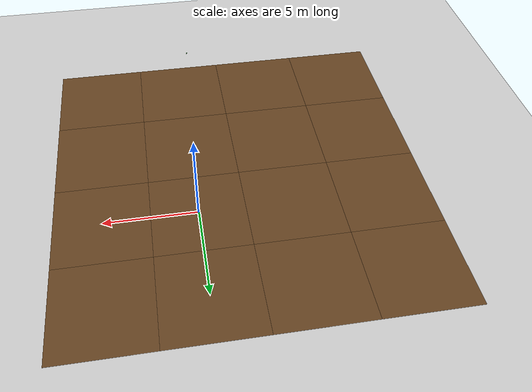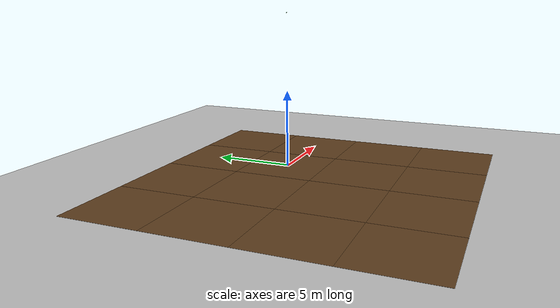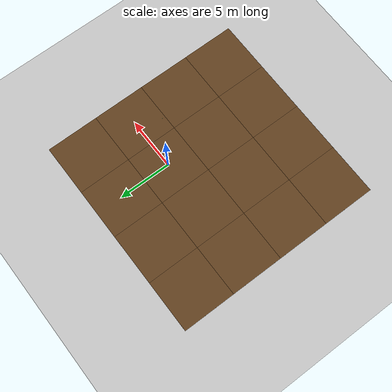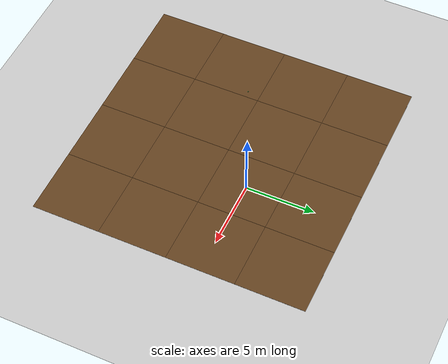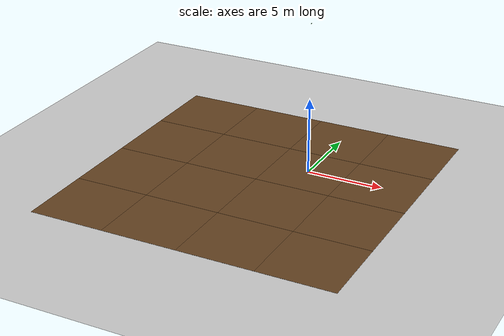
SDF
<sdf version="1.9">
 <world name="empty">
  <physics name="1ms" type="ignored">
   <max_step_size>0.001</max_step_size>
   <real_time_factor>1</real_time_factor>
   <real_time_update_rate>1000</real_time_update_rate>
  </physics>
  <plugin name="gz::sim::systems::Physics" filename="ignition-gazebo-physics-system"/>
  <plugin name="gz::sim::systems::UserCommands" filename="ignition-gazebo-user-commands-system"/>
  <plugin name="gz::sim::systems::SceneBroadcaster" filename="ignition-gazebo-scene-broadcaster-system"/>
  <plugin name="gz::sim::systems::Contact" filename="ignition-gazebo-contact-system"/>
  <plugin name="gz::sim::systems::Sensors" filename="ignition-gazebo-sensors-system">
   <render_engine>ogre2</render_engine>
  </plugin>
  <gravity>0 0 -9.8</gravity>
  <magnetic_field>6e-06 2.3e-05 -4.2e-05</magnetic_field>
  <atmosphere type="adiabatic"/>
  <scene><ambient>0.4 0.4 0.4 1</ambient><background>0.7 0.7 0.7 1</background><shadows>true</shadows></scene>
  <model name="ground_plane">
   <static>true</static>
   <link name="link">
    <collision name="collision">
     <geometry><plane><normal>0 0 1</normal><size>100 100</size></plane></geometry>
    </collision>
    <visual name="visual">
     <geometry><plane><normal>0 0 1</normal><size>100 100</size></plane></geometry>
     <material>
      <ambient>0.8 0.8 0.8 1</ambient>
      <diffuse>0.8 0.8 0.8 1</diffuse>
      <specular>0.8 0.8 0.8 1</specular>
     </material>
    </visual>
    <inertial>
     <mass>1</mass>
     <inertia><ixx>1</ixx><ixy>0</ixy><ixz>0</ixz><iyy>1</iyy><iyz>0</iyz><izz>1</izz></inertia>
    </inertial>
   </link>
  </model>
  <include>
   <uri>package://amigabot_pkg/models/my_ground_plane</uri>
   <pose>0 0 0.03 0 0 0</pose>
   <name>ground_00</name>
   <static>true</static>
  </include>
  <include>
   <uri>package://amigabot_pkg/models/my_ground_plane</uri>
   <pose>-5 0 0.03 0 0 0</pose>
   <name>ground_01</name>
   <static>true</static>
  </include>
  <include>
   <uri>package://amigabot_pkg/models/my_ground_plane</uri>
   <pose>0 -5 0.03 0 0 0</pose>
   <name>ground_02</name>
   <static>true</static>
  </include>
  <include>
   <uri>package://amigabot_pkg/models/my_ground_plane</uri>
   <pose>5 0 0.03 0 0 0</pose>
   <name>ground_03</name>
   <static>true</static>
  </include>
  <include>
   <uri>package://amigabot_pkg/models/my_ground_plane</uri>
   <pose>0 5 0.03 0 0 0</pose>
   <name>ground_04</name>
   <static>true</static>
  </include>
  <include>
   <uri>package://amigabot_pkg/models/my_ground_plane</uri>
   <pose>-5 -5 0.03 0 0 0</pose>
   <name>ground_05</name>
   <static>true</static>
  </include>
  <include>
   <uri>package://amigabot_pkg/models/my_ground_plane</uri>
   <pose>5 -5 0.03 0 0 0</pose>
   <name>ground_06</name>
   <static>true</static>
  </include>
  <include>
   <uri>package://amigabot_pkg/models/my_ground_plane</uri>
   <pose>-10 0 0.03 0 0 0</pose>
   <name>ground_07</name>
   <static>true</static>
  </include>
  <include>
   <uri>package://amigabot_pkg/models/my_ground_plane</uri>
   <pose>5 5 0.03 0 0 0</pose>
   <name>ground_08</name>
   <static>true</static>
  </include>
  <include>
   <uri>package://amigabot_pkg/models/my_ground_plane</uri>
   <pose>-10 5 0.03 0 0 0</pose>
   <name>ground_09</name>
   <static>true</static>
  </include>
  <include>
   <uri>package://amigabot_pkg/models/my_ground_plane</uri>
   <pose>-5 5 0.03 0 0 0</pose>
   <name>ground_10</name>
   <static>true</static>
  </include>
  <include>
   <uri>package://amigabot_pkg/models/my_ground_plane</uri>
   <pose>-10 -10 0.03 0 0 0</pose>
   <name>ground_11</name>
   <static>true</static>
  </include>
  <include>
   <uri>package://amigabot_pkg/models/my_ground_plane</uri>
   <pose>-5 -10 0.03 0 0 0</pose>
   <name>ground_12</name>
   <static>true</static>
  </include>
  <include>
   <uri>package://amigabot_pkg/models/my_ground_plane</uri>
   <pose>0 -10 0.03 0 0 0</pose>
   <name>ground_13</name>
   <static>true</static>
  </include>
  <include>
   <uri>package://amigabot_pkg/models/my_ground_plane</uri>
   <pose>5 -10 0.03 0 0 0</pose>
   <name>ground_14</name>
   <static>true</static>
  </include>
  <include>
   <uri>package://amigabot_pkg/models/my_ground_plane</uri>
   <pose>-10 -5 0.03 0 0 0</pose>
   <name>ground_15</name>
   <static>true</static>
  </include>
  <light name="sun" type="directional">
   <pose>0 0 10 0 -0 0</pose>
   <intensity>1</intensity>
   <direction>-0.5 0.1 -0.9</direction>
   <diffuse>0.8 0.8 0.8 1</diffuse>
   <specular>0.2 0.2 0.2 1</specular>
   <attenuation>
    <range>1000</range>
    <linear>0.01</linear>
    <constant>0.90000000000000002</constant>
    <quadratic>0.001</quadratic>
   </attenuation>
   <spot><inner_angle>0</inner_angle><outer_angle>0</outer_angle><falloff>0</falloff></spot>
  </light>
  <model name="cam_model">
   <pose>0.0 0.0 10.0 0.0 1.57 0.0</pose>
   <static>true</static>
   <link name="cam_link">
    <visual name="box_vis">
     <geometry><box><size>0.04 0.04 0.04</size></box></geometry>
     <material><ambient>0.3 0.6 0.3 1.0</ambient><diffuse>0.3 0.6 0.3 1.0</diffuse></material>
    </visual>
    <sensor name="camera" type="camera">
     <camera>
      <horizontal_fov>1.396</horizontal_fov>
      <image><width>5400</width><height>1920</height></image>
      <clip><near>0.5</near><far>15</far></clip>
      <camera_info_topic>camera/camera_info</camera_info_topic>
     </camera>
     <always_on>1</always_on>
     <update_rate>30</update_rate>
     <visualize>true</visualize>
     <topic>camera/image_raw</topic>
    </sensor>
   </link>
  </model>
 </world>
</sdf>

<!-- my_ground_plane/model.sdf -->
<sdf version="1.4">
   <model name="my_ground_plane">
      <static>true</static>
      <link name="link">
         <collision name="collision">
            <geometry>
               <plane>
                  <normal>0 0 1</normal>
                  <size>5 5</size>
               </plane>
            </geometry>
            <surface>
               <friction>
                  <ode>
                     <mu>100</mu>
                     <mu2>50</mu2>
                  </ode>
               </friction>
            </surface>
         </collision>
         <visual name="visual">
            <cast_shadows>false</cast_shadows>
            <geometry>
               <plane>
                  <normal>0 0 1</normal>
                  <size>5 5</size>
               </plane>
            </geometry>
            <material>
               <diffuse>0.396 0.263 0.129 1.0</diffuse>
               <script>
                  <uri>package://amigabot_pkg/models/my_ground_plane/materials/scripts</uri>
                  <uri>package://amigabot_pkg/models/my_ground_plane/materials/textures</uri>
                  <name>MyGroundPlane/Image</name>
               </script>
               <pbr>
                  <metal>
                     <normal_map>package://amigabot_pkg/models/my_ground_plane/materials/textures/dirt_diffusespecular.png</normal_map>
                  </metal>
               </pbr>
            </material>
         </visual>
      </link>
   </model>
</sdf>
